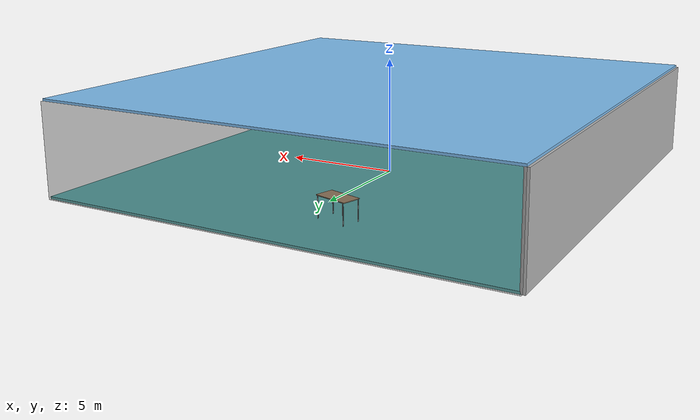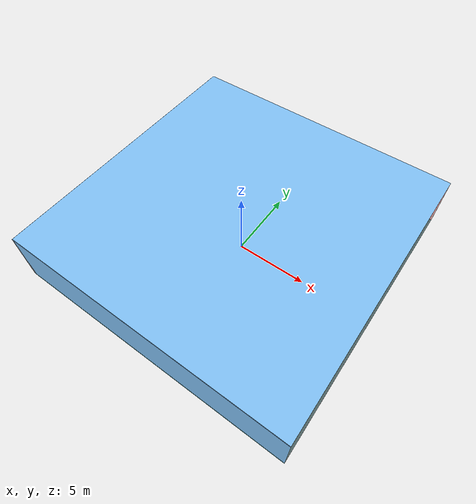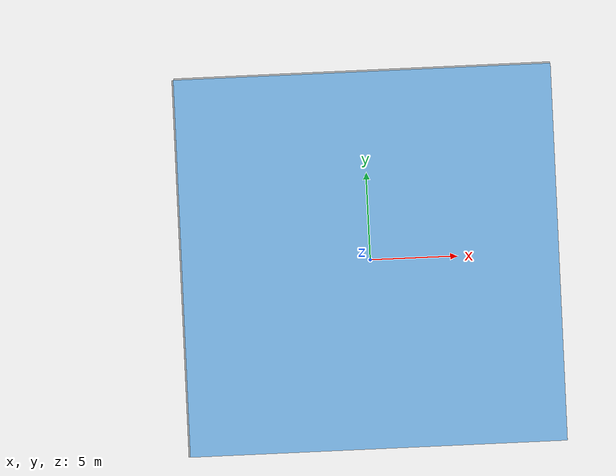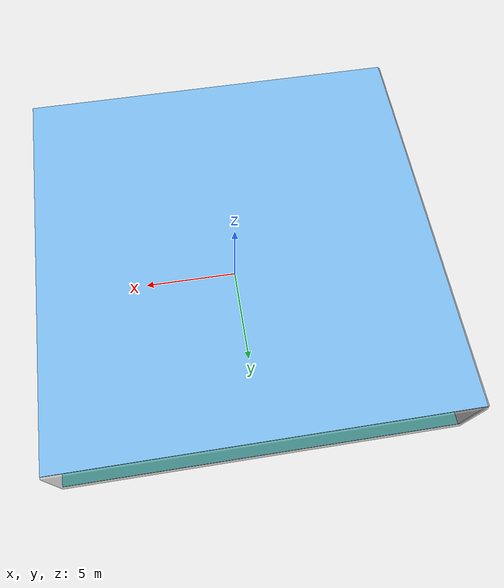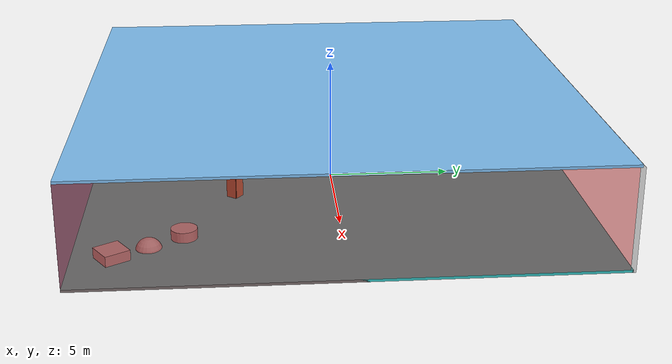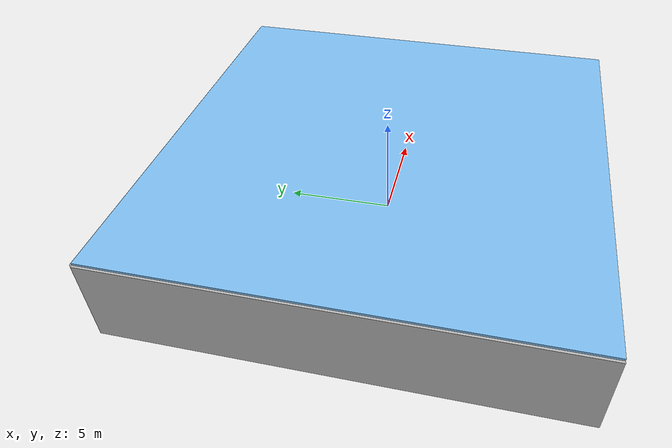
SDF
<sdf version="1.4">
 <world name="default">
  <physics type="ode">
   <max_step_size>0.001</max_step_size>
   <real_time_factor>1</real_time_factor>
   <real_time_update_rate>1000</real_time_update_rate>
   <gravity>0 0 -9.8</gravity>
  </physics>
  <scene><ambient>0.4 0.4 0.4 1</ambient><background>0.7 0.7 0.7 1</background><shadows>1</shadows></scene>
  <model name="Surrounding">
   <static>1</static>
   <link name="Ceiling">
    <collision name="Ceiling_Collision"><geometry><box><size>20 20 0.1</size></box></geometry></collision>
    <visual name="Ceiling_Visual">
     <geometry><box><size>20 20 0.1</size></box></geometry>
     <material>
      <script><uri>file://media/materials/scripts/gazebo.material</uri><name>Gazebo/SkyBlue</name></script>
     </material>
    </visual>
    <pose>0 0 4.05 0 0 0</pose>
   </link>
   <link name="Wall_South">
    <collision name="Wall_South_Collision">
     <geometry><box><size>20 0 4</size></box></geometry>
     <pose>0 0 2 0 -0 0</pose>
    </collision>
    <visual name="Wall_South_Visual">
     <pose>0 0 2 0 -0 0</pose>
     <geometry><box><size>20 0 4</size></box></geometry>
     <material>
      <script><uri>file://media/materials/scripts/gazebo.material</uri><name>Gazebo/SkyBlue</name></script>
     </material>
    </visual>
    <velocity_decay><linear>0</linear><angular>0</angular></velocity_decay>
    <pose>0 -10 0 0 -0 0</pose>
   </link>
   <link name="Wall_East">
    <collision name="Wall_21_Collision">
     <geometry><box><size>20 0 4</size></box></geometry>
     <pose>0 0 2 0 -0 0</pose>
    </collision>
    <visual name="Wall_21_Visual">
     <pose>0 0 2 0 -0 0</pose>
     <geometry><box><size>20 0 4</size></box></geometry>
     <material>
      <script><uri>file://media/materials/scripts/gazebo.material</uri><name>Gazebo/RedTransparent</name></script>
     </material>
    </visual>
    <velocity_decay><linear>0</linear><angular>0</angular></velocity_decay>
    <pose>10 0 0 0 -0 1.5708</pose>
   </link>
   <link name="Wall_North">
    <collision name="Wall_22_Collision">
     <geometry><box><size>20 0.2 4</size></box></geometry>
     <pose>0 0 2 0 -0 0</pose>
    </collision>
    <visual name="Wall_22_Visual">
     <pose>0 0 2 0 -0 0</pose>
     <geometry><box><size>20 0.2 4</size></box></geometry>
     <material>
      <script><uri>file://media/materials/scripts/gazebo.material</uri><name>Gazebo/GreyTransparent</name></script>
     </material>
    </visual>
    <velocity_decay><linear>0</linear><angular>0</angular></velocity_decay>
    <pose>0 10 0 0 -0 0</pose>
   </link>
   <link name="Wall_West">
    <collision name="Wall_23_Collision">
     <geometry><box><size>20 0.2 4</size></box></geometry>
     <pose>0 0 2 0 -0 0</pose>
    </collision>
    <visual name="Wall_23_Visual">
     <pose>0 0 2 0 -0 0</pose>
     <geometry><box><size>20 0.2 4</size></box></geometry>
     <material>
      <script><uri>file://media/materials/scripts/gazebo.material</uri><name>Gazebo/PioneerBody</name></script>
     </material>
    </visual>
    <velocity_decay><linear>0</linear><angular>0</angular></velocity_decay>
    <pose>-10 0 0 0 0 -1.5708</pose>
   </link>
   <link name="Ground_link">
    <collision name="collision">
     <pose>0 0 .05 0 -0 0</pose>
     <geometry><box><size>20 20 0.1</size></box></geometry>
    </collision>
    <visual name="visual">
     <pose>0 0 .05 0 -0 0</pose>
     <geometry><box><size>20 20 0.1</size></box></geometry>
     <material>
      <script>
       <uri>file://media/materials/scripts/gazebo.material</uri>
       <name>Gazebo/TurquoiseGlowOutline</name>
      </script>
     </material>
    </visual>
   </link>
   <static>1</static>
  </model>
  <spherical_coordinates>
   <surface_model>EARTH_WGS84</surface_model>
   <latitude_deg>0</latitude_deg>
   <longitude_deg>0</longitude_deg>
   <elevation>0</elevation>
   <heading_deg>0</heading_deg>
  </spherical_coordinates>
  <light name="lightball_0" type="diffuse">
   <diffuse>0.8 0.8 0.8 1</diffuse>
   <specular>0.2 0.2 0.2 1</specular>
   <attenuation>
    <range>100</range>
    <constant>0.7</constant>
    <linear>0.01</linear>
    <quadratic>0.001</quadratic>
   </attenuation>
   <direction>-0.5 0.1 -0.9</direction>
   <pose>8.37122361838 5.19849935647 3.21488493395 0 0 0</pose>
  </light>
  <light name="lightball_1" type="diffuse">
   <diffuse>0.8 0.8 0.8 1</diffuse>
   <specular>0.2 0.2 0.2 1</specular>
   <attenuation>
    <range>100</range>
    <constant>0.7</constant>
    <linear>0.01</linear>
    <quadratic>0.001</quadratic>
   </attenuation>
   <direction>-0.5 0.1 -0.9</direction>
   <pose>5.29760582441 3.63721150177 3.41847894525 0 0 0</pose>
  </light>
  <light name="lightball_2" type="diffuse">
   <diffuse>0.8 0.8 0.8 1</diffuse>
   <specular>0.2 0.2 0.2 1</specular>
   <attenuation>
    <range>100</range>
    <constant>0.7</constant>
    <linear>0.01</linear>
    <quadratic>0.001</quadratic>
   </attenuation>
   <direction>-0.5 0.1 -0.9</direction>
   <pose>-0.805310570333 -7.88990479027 2.2881230565 0 0 0</pose>
  </light>
  <light name="lightball_3" type="diffuse">
   <diffuse>0.8 0.8 0.8 1</diffuse>
   <specular>0.2 0.2 0.2 1</specular>
   <attenuation>
    <range>100</range>
    <constant>0.7</constant>
    <linear>0.01</linear>
    <quadratic>0.001</quadratic>
   </attenuation>
   <direction>-0.5 0.1 -0.9</direction>
   <pose>0.343632354171 2.71346120238 1.44398858181 0 0 0</pose>
  </light>
  <light name="lightball_4" type="diffuse">
   <diffuse>0.8 0.8 0.8 1</diffuse>
   <specular>0.2 0.2 0.2 1</specular>
   <attenuation>
    <range>100</range>
    <constant>0.7</constant>
    <linear>0.01</linear>
    <quadratic>0.001</quadratic>
   </attenuation>
   <direction>-0.5 0.1 -0.9</direction>
   <pose>-8.07915410422 -2.13111782338 1.44114272203 0 0 0</pose>
  </light>
  <light name="lightball_5" type="diffuse">
   <diffuse>0.8 0.8 0.8 1</diffuse>
   <specular>0.2 0.2 0.2 1</specular>
   <attenuation>
    <range>100</range>
    <constant>0.7</constant>
    <linear>0.01</linear>
    <quadratic>0.001</quadratic>
   </attenuation>
   <direction>-0.5 0.1 -0.9</direction>
   <pose>5.68588646742 -6.53760168935 2.6224213619 0 0 0</pose>
  </light>
  <light name="lightball_6" type="diffuse">
   <diffuse>0.8 0.8 0.8 1</diffuse>
   <specular>0.2 0.2 0.2 1</specular>
   <attenuation>
    <range>100</range>
    <constant>0.7</constant>
    <linear>0.01</linear>
    <quadratic>0.001</quadratic>
   </attenuation>
   <direction>-0.5 0.1 -0.9</direction>
   <pose>3.99694769038 -7.54094430581 1.89155570726 0 0 0</pose>
  </light>
  <light name="lightball_7" type="diffuse">
   <diffuse>0.8 0.8 0.8 1</diffuse>
   <specular>0.2 0.2 0.2 1</specular>
   <attenuation>
    <range>100</range>
    <constant>0.7</constant>
    <linear>0.01</linear>
    <quadratic>0.001</quadratic>
   </attenuation>
   <direction>-0.5 0.1 -0.9</direction>
   <pose>6.20342757807 3.34954496698 3.38899268317 0 0 0</pose>
  </light>
  <light name="lightball_8" type="diffuse">
   <diffuse>0.8 0.8 0.8 1</diffuse>
   <specular>0.2 0.2 0.2 1</specular>
   <attenuation>
    <range>100</range>
    <constant>0.7</constant>
    <linear>0.01</linear>
    <quadratic>0.001</quadratic>
   </attenuation>
   <direction>-0.5 0.1 -0.9</direction>
   <pose>-7.55078032197 3.12747967556 3.67094488269 0 0 0</pose>
  </light>
  <light name="lightball_9" type="diffuse">
   <diffuse>0.8 0.8 0.8 1</diffuse>
   <specular>0.2 0.2 0.2 1</specular>
   <attenuation>
    <range>100</range>
    <constant>0.7</constant>
    <linear>0.01</linear>
    <quadratic>0.001</quadratic>
   </attenuation>
   <direction>-0.5 0.1 -0.9</direction>
   <pose>2.64574879664 2.71383228858 1.51338119991 0 0 0</pose>
  </light>
  <light name="lightball_10" type="diffuse">
   <diffuse>0.8 0.8 0.8 1</diffuse>
   <specular>0.2 0.2 0.2 1</specular>
   <attenuation>
    <range>100</range>
    <constant>0.7</constant>
    <linear>0.01</linear>
    <quadratic>0.001</quadratic>
   </attenuation>
   <direction>-0.5 0.1 -0.9</direction>
   <pose>4.58357264366 6.81008871688 1.40099361312 0 0 0</pose>
  </light>
  <include><uri>model://cabinet</uri><pose>-4.45834890993 -6.822989285 0 0 0 1.11194910232</pose></include>
  <include><uri>model://table</uri><pose>-1.61042574896 6.96896067629 0 0 0 2.87309080172</pose></include>
  <include><uri>model://cabinet</uri><pose>2.17316763928 -4.06398125362 0 0 0 0.928900124185</pose></include>
  <include>
   <uri>model://textured_shapes</uri>
   <pose>6.89438673198 -7.21605216392 0 0 0 0.565229260443</pose>
  </include>
 </world>
</sdf>

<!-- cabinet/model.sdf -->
<sdf version="1.5">
  <model name="cabinet">
    <static>true</static>
    <link name="cabinet_bottom_plate">
      <inertial>
        <pose>0 0 -1 0 0 0</pose>
        <inertia>
          <ixx>2.050000</ixx>
          <ixy>0</ixy>
          <ixz>0</ixz>
          <iyy>2.050000</iyy>
          <iyz>0</iyz>
          <izz>2.050000</izz>
        </inertia>
        <mass>25.000000</mass>
      </inertial>
      <collision name="cabinet_bottom_plate_geom">
        <pose>0 0 0.010000 0 0 0</pose>
        <geometry>
          <box>
            <size>0.450000 0.450000 0.020000</size>
          </box>
        </geometry>
      </collision>
      <visual name="cabinet_bottom_plate_geom_visual">
        <pose>0 0 0.010000 0 0 0</pose>
        <geometry>
          <box>
            <size>0.450000 0.450000 0.020000</size>
          </box>
        </geometry>
        <material>
          <script>
            <uri>model://media/materials/scripts/gazebo.material</uri>
            <name>Gazebo/Wood</name>
          </script>
        </material>
      </visual>
      <collision name="cabinet_bottom_plate_geom_cabinet_back_plate">
        <pose>0.235000 0 0.510000 0 0 0</pose>
        <geometry>
          <box>
            <size>0.020000 0.450000 1.020000</size>
          </box>
        </geometry>
      </collision>
      <visual name="cabinet_bottom_plate_geom_cabinet_back_plate_visual">
        <pose>0.235000 0 0.510000 0 0 0</pose>
        <geometry>
          <box>
            <size>0.020000 0.450000 1.020000</size>
          </box>
        </geometry>
        <material>
          <script>
            <uri>model://media/materials/scripts/gazebo.material</uri>
            <name>Gazebo/Wood</name>
          </script>
        </material>
      </visual>
      <collision name="cabinet_bottom_plate_geom_cabinet_left_plate">
        <pose>0 0.235000 0.510000 0 0 0</pose>
        <geometry>
          <box>
            <size>0.450000 0.020000 1.020000</size>
          </box>
        </geometry>
      </collision>
      <visual name="cabinet_bottom_plate_geom_cabinet_left_plate_visual">
        <pose>0 0.235000 0.510000 0 0 0</pose>
        <geometry>
          <box>
            <size>0.450000 0.020000 1.020000</size>
          </box>
        </geometry>
        <material>
          <script>
            <uri>model://media/materials/scripts/gazebo.material</uri>
            <name>Gazebo/Wood</name>
          </script>
        </material>
      </visual>
      <collision name="cabinet_bottom_plate_geom_cabinet_middle_plate">
        <pose>0 0 0.510000 0 0 0</pose>
        <geometry>
          <box>
            <size>0.450000 0.450000 0.020000</size>
          </box>
        </geometry>
      </collision>
      <visual name="cabinet_bottom_plate_geom_cabinet_middle_plate_visual">
        <pose>0 0 0.510000 0 0 0</pose>
        <geometry>
          <box>
            <size>0.450000 0.450000 0.020000</size>
          </box>
        </geometry>
        <material>
          <script>
            <uri>model://media/materials/scripts/gazebo.material</uri>
            <name>Gazebo/Wood</name>
          </script>
        </material>
      </visual>
      <collision name="cabinet_bottom_plate_geom_cabinet_right_plate">
        <pose>0 -0.235000 0.510000 0 0 0</pose>
        <geometry>
          <box>
            <size>0.450000 0.020000 1.020000</size>
          </box>
        </geometry>
      </collision>
      <visual name="cabinet_bottom_plate_geom_cabinet_right_plate_visual">
        <pose>0 -0.235000 0.510000 0 0 0</pose>
        <geometry>
          <box>
            <size>0.450000 0.020000 1.020000</size>
          </box>
        </geometry>
        <material>
          <script>
            <uri>model://media/materials/scripts/gazebo.material</uri>
            <name>Gazebo/Wood</name>
          </script>
        </material>
      </visual>
      <collision name="cabinet_bottom_plate_geom_cabinet_top_plate">
        <pose>0 0 1.010000 0 0 0</pose>
        <geometry>
          <box>
            <size>0.450000 0.450000 0.020000</size>
          </box>
        </geometry>
      </collision>
      <visual name="cabinet_bottom_plate_geom_cabinet_top_plate_visual">
        <pose>0 0 1.010000 0 0 0</pose>
        <geometry>
          <box>
            <size>0.450000 0.450000 0.020000</size>
          </box>
        </geometry>
        <material>
          <script>
            <uri>model://media/materials/scripts/gazebo.material</uri>
            <name>Gazebo/Wood</name>
          </script>
        </material>
      </visual>
    </link>
  </model>
</sdf>

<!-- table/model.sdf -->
<sdf version="1.5">
  <model name="table">
    <static>true</static>
    <link name="link">
      <collision name="surface">
        <pose>0 0 1.0 0 0 0</pose>
        <geometry>
          <box>
            <size>1.5 0.8 0.03</size>
          </box>
        </geometry>
        <surface>
          <friction>
            <ode>
              <mu>0.6</mu>
              <mu2>0.6</mu2>
            </ode>
          </friction>
        </surface>
      </collision>
      <visual name="visual1">
        <pose>0 0 1.0 0 0 0</pose>
        <geometry>
          <box>
            <size>1.5 0.8 0.03</size>
          </box>
        </geometry>
        <material>
          <script>
            <uri>model://media/materials/scripts/gazebo.material</uri>
            <name>Gazebo/Wood</name>
          </script>
        </material>
      </visual>
      <collision name="front_left_leg">
        <pose>0.68 0.38 0.5 0 0 0</pose>
        <geometry>
          <cylinder>
            <radius>0.02</radius>
            <length>1.0</length>
          </cylinder>
        </geometry>
      </collision>
      <visual name="front_left_leg">
        <pose>0.68 0.38 0.5 0 0 0</pose>
        <geometry>
          <cylinder>
            <radius>0.02</radius>
            <length>1.0</length>
          </cylinder>
        </geometry>
        <material>
          <script>
            <uri>model://media/materials/scripts/gazebo.material</uri>
            <name>Gazebo/Grey</name>
          </script>
        </material>
      </visual>
      <collision name="front_right_leg">
        <pose>0.68 -0.38 0.5 0 0 0</pose>
        <geometry>
          <cylinder>
            <radius>0.02</radius>
            <length>1.0</length>
          </cylinder>
        </geometry>
      </collision>
      <visual name="front_right_leg">
        <pose>0.68 -0.38 0.5 0 0 0</pose>
        <geometry>
          <cylinder>
            <radius>0.02</radius>
            <length>1.0</length>
          </cylinder>
        </geometry>
        <material>
          <script>
            <uri>model://media/materials/scripts/gazebo.material</uri>
            <name>Gazebo/Grey</name>
          </script>
        </material>
      </visual>
      <collision name="back_right_leg">
        <pose>-0.68 -0.38 0.5 0 0 0</pose>
        <geometry>
          <cylinder>
            <radius>0.02</radius>
            <length>1.0</length>
          </cylinder>
        </geometry>
      </collision>
      <visual name="back_right_leg">
        <pose>-0.68 -0.38 0.5 0 0 0</pose>
        <geometry>
          <cylinder>
            <radius>0.02</radius>
            <length>1.0</length>
          </cylinder>
        </geometry>
        <material>
          <script>
            <uri>model://media/materials/scripts/gazebo.material</uri>
            <name>Gazebo/Grey</name>
          </script>
        </material>
      </visual>
      <collision name="back_left_leg">
        <pose>-0.68 0.38 0.5 0 0 0</pose>
        <geometry>
          <cylinder>
            <radius>0.02</radius>
            <length>1.0</length>
          </cylinder>
        </geometry>
      </collision>
      <visual name="back_left_leg">
        <pose>-0.68 0.38 0.5 0 0 0</pose>
        <geometry>
          <cylinder>
            <radius>0.02</radius>
            <length>1.0</length>
          </cylinder>
        </geometry>
        <material>
          <script>
            <uri>model://media/materials/scripts/gazebo.material</uri>
            <name>Gazebo/Grey</name>
          </script>
        </material>
      </visual>
    </link>
  </model>
</sdf>

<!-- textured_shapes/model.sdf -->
<sdf version="1.6">
  <model name="textured_shapes">
    <pose>0 0 0.5 0 0 0</pose>
    <link name="box">
      <pose>0 -1.5 0 0 0 0</pose>
      <collision name="collision">
        <geometry>
          <box>
            <size>1 1 1</size>
          </box>
        </geometry>
      </collision>
      <visual name="visual">
        <geometry>
          <box>
            <size>1 1 1</size>
          </box>
        </geometry>
        <material>
          <script>
            <uri>model://../model_source/models/textured_shapes/materials/scripts</uri>
            <uri>model://../model_source/models/textured_shapes/materials/textures</uri>
            <name>TexturedShape/Squares</name>
          </script>
        </material>
      </visual>
    </link>
    <link name="sphere">
      <collision name="collision">
        <geometry>
          <sphere>
            <radius>0.5</radius>
          </sphere>
        </geometry>
      </collision>
      <visual name="visual">
        <geometry>
          <sphere>
            <radius>0.5</radius>
          </sphere>
        </geometry>
        <material>
          <script>
            <uri>model://../model_source/models/textured_shapes/materials/scripts</uri>
            <uri>model://../model_source/models/textured_shapes/materials/textures</uri>
            <name>TexturedShape/Squares</name>
          </script>
        </material>
      </visual>
    </link>
    <link name="cylinder">
      <pose>0 1.5 0 0 0 0</pose>
      <collision name="collision">
        <geometry>
          <cylinder>
            <radius>0.5</radius>
            <length>1</length>
          </cylinder>
        </geometry>
      </collision>
      <visual name="visual">
        <geometry>
          <cylinder>
            <radius>0.5</radius>
            <length>1</length>
          </cylinder>
        </geometry>
        <material>
          <script>
            <uri>model://../model_source/models/textured_shapes/materials/scripts</uri>
            <uri>model://../model_source/models/textured_shapes/materials/textures</uri>
            <name>TexturedShape/Squares</name>
          </script>
        </material>
      </visual>
    </link>
  </model>
</sdf>
